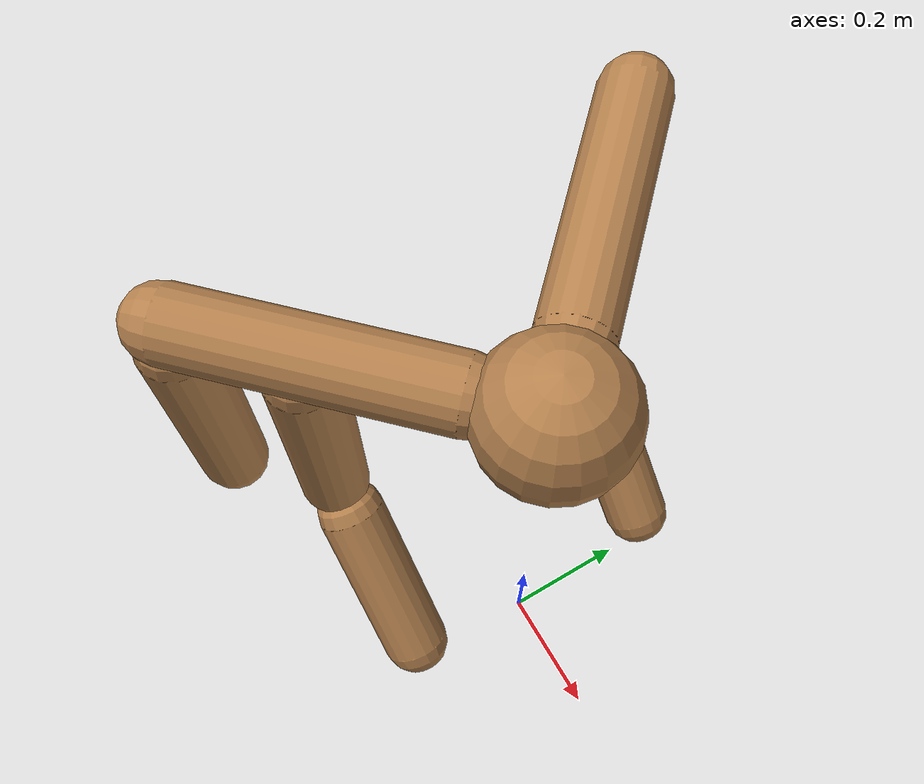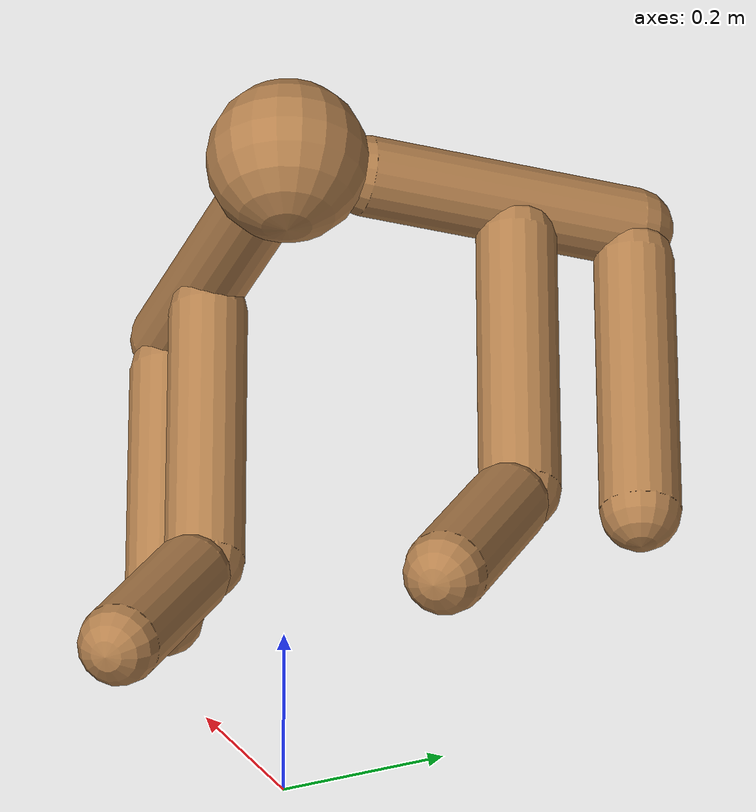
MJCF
<?xml version='1.0' encoding='UTF-8'?>
<!-- Universal Animal Template: unimal -->
<mujoco model="unimal">
  <compiler angle="degree"/>
  <size njmax="2000" nconmax="500"/>
  <option timestep=".005">
    <flag filterparent="disable"/>
  </option>
  <!-- Common defaults to make search space tractable -->
  <default>
    <!-- Define motor defaults -->
    <motor ctrlrange="-1 1" ctrllimited="true"/>
    <!-- Define joint defaults -->
    <default class="normal_joint">
      <joint type="hinge" damping="1" stiffness="1" armature="1" limited="true" range="-120 120" solimplimit="0 0.99 0.01"/>
    </default>
    <default class="walker_joint">
      <joint type="hinge" damping="0.2" stiffness="1" armature=".01" limited="true" range="-120 120" solimplimit="0 0.99 0.01"/>
    </default>
    <default class="stiff_joint">
      <joint type="hinge" damping="5" stiffness="10" armature=".01" limited="true" solimplimit="0 0.99 0.01"/>
    </default>
    <default class="free">
      <joint limited="false" damping="0" armature="0" stiffness="0"/>
    </default>
    <default class="growth_site">
      <site size="1e-6 1e-6 1e-6"/>
    </default>
    <default class="torso_growth_site">
      <site size="1e-6 1e-6 1e-6"/>
    </default>
    <default class="mirror_growth_site">
      <site size="1e-6 1e-6 1e-6"/>
    </default>
    <default class="btm_pos_site">
      <site size="1e-6 1e-6 1e-6"/>
    </default>
    <default class="box_face_site">
      <site size="1e-6 1e-6 1e-6"/>
    </default>
    <default class="imu_vel">
      <site type="box" size="0.05" rgba="1 0 0 0"/>
    </default>
    <default class="touch_site">
      <site group="3" rgba="0 0 1 .3"/>
    </default>
    <default class="food_site">
      <site material="food" size="0.15"/>
    </default>
    <!-- Define geom defaults -->
    <geom type="capsule" condim="3" friction="0.7 0.1 0.1" material="self"/>
  </default>
  <worldbody>
    <light diffuse="1 1 1" directional="true" exponent="1" pos="0 0 8" specular="0.1 0.1 0.1" dir="0 0 -1"/>
    <!-- Programatically generated xml goes here -->
    <body name="torso/0" pos="0 0 0.85">
      <joint name="root" type="free" class="free"/>
      <site name="root" class="imu_vel"/>
      <geom name="torso/0" type="sphere" size="0.1" condim="3" density="800"/>
      <camera name="side" pos="0 -7 2" xyaxes="1 0 0 0 1 2" mode="trackcom"/>
      <site name="torso/0" class="growth_site" pos="0 0 0"/>
      <site name="torso/btm_pos/0" class="btm_pos_site" pos="0 0 -0.1"/>
      <site name="torso/touch/0" class="touch_site" size="0.11"/>
      <site name="torso/vertical/0" class="torso_growth_site" pos="0 0 -0.1"/>
      <body name="limb/0" pos="-0.07 0.07 0.0">
        <joint name="limbx/0" type="hinge" class="normal_joint" range="0 30" pos="0.04 -0.04 0.0" axis="0.5 0.5 -0.7071"/>
        <joint name="limby/0" type="hinge" class="normal_joint" range="-90 0" pos="0.04 -0.04 0.0" axis="0.5 0.5 0.7071"/>
        <geom name="limb/0" type="capsule" fromto="0.0 0.0 0.0 -0.25 0.25 0.0" size="0.05" density="500"/>
        <site name="limb/mid/0" class="mirror_growth_site" pos="-0.14 0.14 0.0"/>
        <site name="limb/btm/0" class="mirror_growth_site" pos="-0.25 0.25 0.0"/>
        <site name="limb/btm_pos/0" class="btm_pos_site" pos="-0.25 0.25 0.0"/>
        <site name="limb/touch/0" class="touch_site" size="0.060000000000000005" fromto="0.0 0.0 0.0 -0.25 0.25 0.0" type="capsule"/>
        <body name="limb/39" pos="-0.14 0.14 -0.05">
          <joint name="limbx/39" type="hinge" class="normal_joint" range="-60 30" pos="0.0 0.0 0.05" axis="1.0 0.0 0.0"/>
          <geom name="limb/39" type="capsule" fromto="0.0 0.0 0.0 0.0 0.0 -0.35" size="0.05" density="500"/>
          <site name="limb/mid/39" class="mirror_growth_site" pos="0.0 0.0 -0.2"/>
          <site name="limb/btm/39" class="mirror_growth_site" pos="0.0 0.0 -0.35"/>
          <site name="limb/btm_pos/39" class="btm_pos_site" pos="0.0 0.0 -0.4"/>
          <site name="limb/touch/39" class="touch_site" size="0.060000000000000005" fromto="0.0 0.0 0.0 0.0 0.0 -0.35" type="capsule"/>
          <body name="limb/41" pos="0.04 0.0 -0.38999999999999996">
            <joint name="limby/41" type="hinge" class="normal_joint" range="0 45" pos="-0.04 0.0 0.04" axis="-0.0 1.0 0.0"/>
            <geom name="limb/41" type="capsule" fromto="0.0 0.0 0.0 0.18 0.0 -0.18" size="0.05" density="500"/>
            <site name="limb/mid/41" class="mirror_growth_site" pos="0.11 0.0 -0.11"/>
            <site name="limb/btm/41" class="mirror_growth_site" pos="0.18 0.0 -0.18"/>
            <site name="limb/btm_pos/41" class="btm_pos_site" pos="0.21 0.0 -0.21"/>
            <site name="limb/touch/41" class="touch_site" size="0.060000000000000005" fromto="0.0 0.0 0.0 0.18 0.0 -0.18" type="capsule"/>
          </body>
        </body>
        <body name="limb/43" pos="-0.25 0.25 -0.05">
          <joint name="limbx/43" type="hinge" class="normal_joint" range="0 90" pos="0.0 0.0 0.05" axis="1.0 0.0 0.0"/>
          <joint name="limby/43" type="hinge" class="normal_joint" range="0 60" pos="0.0 0.0 0.05" axis="0.0 1.0 0.0"/>
          <geom name="limb/43" type="capsule" fromto="0.0 0.0 0.0 0.0 0.0 -0.35" size="0.05" density="500"/>
          <site name="limb/mid/43" class="mirror_growth_site" pos="0.0 0.0 -0.2"/>
          <site name="limb/btm/43" class="mirror_growth_site" pos="0.0 0.0 -0.35"/>
          <site name="limb/btm_pos/43" class="btm_pos_site" pos="0.0 0.0 -0.4"/>
          <site name="limb/touch/43" class="touch_site" size="0.060000000000000005" fromto="0.0 0.0 0.0 0.0 0.0 -0.35" type="capsule"/>
        </body>
      </body>
      <body name="limb/1" pos="-0.07 -0.07 0.0">
        <joint name="limbx/1" type="hinge" class="normal_joint" range="0 30" pos="0.04 0.04 0.0" axis="0.5 -0.5 -0.7071"/>
        <joint name="limby/1" type="hinge" class="normal_joint" range="-90 0" pos="0.04 0.04 0.0" axis="-0.5 0.5 -0.7071"/>
        <geom name="limb/1" type="capsule" fromto="0.0 0.0 0.0 -0.25 -0.25 0.0" size="0.05" density="500"/>
        <site name="limb/mid/1" class="mirror_growth_site" pos="-0.14 -0.14 0.0"/>
        <site name="limb/btm/1" class="mirror_growth_site" pos="-0.25 -0.25 0.0"/>
        <site name="limb/btm_pos/1" class="btm_pos_site" pos="-0.25 -0.25 0.0"/>
        <site name="limb/touch/1" class="touch_site" size="0.060000000000000005" fromto="0.0 0.0 0.0 -0.25 -0.25 0.0" type="capsule"/>
        <body name="limb/40" pos="-0.14 -0.14 -0.05">
          <joint name="limbx/40" type="hinge" class="normal_joint" range="-60 30" pos="0.0 0.0 0.05" axis="1.0 0.0 0.0"/>
          <geom name="limb/40" type="capsule" fromto="0.0 0.0 0.0 0.0 0.0 -0.35" size="0.05" density="500"/>
          <site name="limb/mid/40" class="mirror_growth_site" pos="0.0 0.0 -0.2"/>
          <site name="limb/btm/40" class="mirror_growth_site" pos="0.0 0.0 -0.35"/>
          <site name="limb/btm_pos/40" class="btm_pos_site" pos="0.0 0.0 -0.4"/>
          <site name="limb/touch/40" class="touch_site" size="0.060000000000000005" fromto="0.0 0.0 0.0 0.0 0.0 -0.35" type="capsule"/>
          <body name="limb/42" pos="0.04 0.0 -0.38999999999999996">
            <joint name="limby/42" type="hinge" class="normal_joint" range="0 45" pos="-0.04 0.0 0.04" axis="-0.0 1.0 0.0"/>
            <geom name="limb/42" type="capsule" fromto="0.0 0.0 0.0 0.18 0.0 -0.18" size="0.05" density="500"/>
            <site name="limb/mid/42" class="mirror_growth_site" pos="0.11 0.0 -0.11"/>
            <site name="limb/btm/42" class="mirror_growth_site" pos="0.18 0.0 -0.18"/>
            <site name="limb/btm_pos/42" class="btm_pos_site" pos="0.21 0.0 -0.21"/>
            <site name="limb/touch/42" class="touch_site" size="0.060000000000000005" fromto="0.0 0.0 0.0 0.18 0.0 -0.18" type="capsule"/>
          </body>
        </body>
        <body name="limb/44" pos="-0.25 -0.25 -0.05">
          <joint name="limbx/44" type="hinge" class="normal_joint" range="0 90" pos="0.0 0.0 0.05" axis="1.0 0.0 0.0"/>
          <joint name="limby/44" type="hinge" class="normal_joint" range="0 60" pos="0.0 0.0 0.05" axis="0.0 1.0 0.0"/>
          <geom name="limb/44" type="capsule" fromto="0.0 0.0 0.0 0.0 0.0 -0.35" size="0.05" density="500"/>
          <site name="limb/mid/44" class="mirror_growth_site" pos="0.0 0.0 -0.2"/>
          <site name="limb/btm/44" class="mirror_growth_site" pos="0.0 0.0 -0.35"/>
          <site name="limb/btm_pos/44" class="btm_pos_site" pos="0.0 0.0 -0.4"/>
          <site name="limb/touch/44" class="touch_site" size="0.060000000000000005" fromto="0.0 0.0 0.0 0.0 0.0 -0.35" type="capsule"/>
        </body>
      </body>
    </body>
  </worldbody>
  <actuator>
    <motor joint="limbx/0" gear="250" name="limbx/0"/>
    <motor joint="limby/0" gear="200" name="limby/0"/>
    <motor joint="limbx/39" gear="300" name="limbx/39"/>
    <motor joint="limby/41" gear="150" name="limby/41"/>
    <motor joint="limbx/43" gear="250" name="limbx/43"/>
    <motor joint="limby/43" gear="150" name="limby/43"/>
    <motor joint="limbx/1" gear="250" name="limbx/1"/>
    <motor joint="limby/1" gear="200" name="limby/1"/>
    <motor joint="limbx/40" gear="300" name="limbx/40"/>
    <motor joint="limby/42" gear="150" name="limby/42"/>
    <motor joint="limbx/44" gear="250" name="limbx/44"/>
    <motor joint="limby/44" gear="150" name="limby/44"/>
  </actuator>
  <sensor>
    <accelerometer name="torso_accel" site="root"/>
    <gyro name="torso_gyro" site="root"/>
    <velocimeter name="torso_vel" site="root"/>
    <subtreeangmom name="unimal_am" body="torso/0"/>
    <touch name="torso/0" site="torso/touch/0"/>
    <touch name="limb/0" site="limb/touch/0"/>
    <touch name="limb/39" site="limb/touch/39"/>
    <touch name="limb/41" site="limb/touch/41"/>
    <touch name="limb/43" site="limb/touch/43"/>
    <touch name="limb/1" site="limb/touch/1"/>
    <touch name="limb/40" site="limb/touch/40"/>
    <touch name="limb/42" site="limb/touch/42"/>
    <touch name="limb/44" site="limb/touch/44"/>
  </sensor>
  <!-- Add hfield assets -->
  <asset/>
  <!-- List of contacts to exclude -->
  <contact/>
  <!-- Define material, texture etc -->
  <asset>
    <material name="grid" texture="grid" texrepeat="1 1" texuniform="true" reflectance="0.1"/>
    <material name="hfield" texture="hfield" texrepeat="1 1" texuniform="true" reflectance="0.1"/>
    <material name="wall" texture="wall" texrepeat="1 1" texuniform="true" reflectance=".5"/>
    <material name="platform" texture="platform" texrepeat="1 1" texuniform="true" reflectance=".5"/>
    <material name="boundary" texture="boundary" texrepeat="1 1" texuniform="true" reflectance=".5"/>
    <material name="jump" texture="jump" texrepeat="1 1" texuniform="true" reflectance=".5"/>
    <material name="goal" rgba="1 0 0 1"/>
    <material name="food" rgba="0 0 1 1" emission="1"/>
    <material name="init_position" rgba="0 1 0 0.7"/>
    <material name="self" rgba=".7 .5 .3 1"/>
    <material name="self_invisible" rgba=".7 .5 .3 0"/>
    <material name="self_default" rgba=".7 .5 .3 1"/>
    <material name="self_highlight" rgba="0 .5 .3 1"/>
    <material name="effector" rgba=".7 .4 .2 1"/>
    <material name="effector_default" rgba=".7 .4 .2 1"/>
    <material name="effector_highlight" rgba="0 .5 .3 1"/>
    <material name="decoration" rgba=".3 .5 .7 1"/>
    <material name="eye" rgba="0 .2 1 1"/>
    <material name="target" rgba=".6 .3 .3 1"/>
    <material name="target_default" rgba=".6 .3 .3 1"/>
    <material name="target_highlight" rgba=".6 .3 .3 .4"/>
    <material name="site" rgba=".5 .5 .5 .3"/>
    <material name="ball" texture="ball"/>
  </asset>
  <asset>
    <texture name="grid" type="2d" builtin="checker" rgb1="0.4 0.4 0.4" rgb2="0.4 0.4 0.4" width="300" height="300" mark="edge" markrgb="0.2 0.2 0.2"/>
    <texture name="hfield" type="2d" builtin="checker" rgb1="0.4 0.4 0.4" rgb2="0.4 0.4 0.4" width="300" height="300" mark="edge" markrgb="0.2 0.2 0.2"/>
    <texture name="wall" type="2d" builtin="flat" rgb1="0.9 0.7 0" rgb2="0.9 0.7 0" width="300" height="300"/>
    <texture name="platform" type="2d" builtin="flat" rgb1="0.3 0 0.8" rgb2="0.3 0 0.8" width="300" height="300"/>
    <texture name="boundary" type="2d" builtin="flat" rgb1="0.3 0.3 0.3" rgb2="0.3 0.3 0.3" width="300" height="300"/>
    <texture name="jump" type="2d" builtin="flat" rgb1="0.3 0.3 0.3" rgb2="0.3 0.3 0.3" width="300" height="300"/>
    <texture name="skybox" type="skybox" builtin="gradient" rgb1="1 1 1" rgb2="0.6 0.6 0.6" width="800" height="800"/>
    <texture name="ball" builtin="checker" mark="cross" width="151" height="151" rgb1="0.1 0.1 0.1" rgb2="0.9 0.9 0.9" markrgb="1 1 1"/>
  </asset>
  <visual>
    <headlight ambient="0.6 0.6 0.6" diffuse="0.3 0.3 0.3" specular="0 0 0"/>
    <map znear=".01" shadowclip="0.5"/>
    <quality shadowsize="16384"/>
  </visual>
</mujoco>
